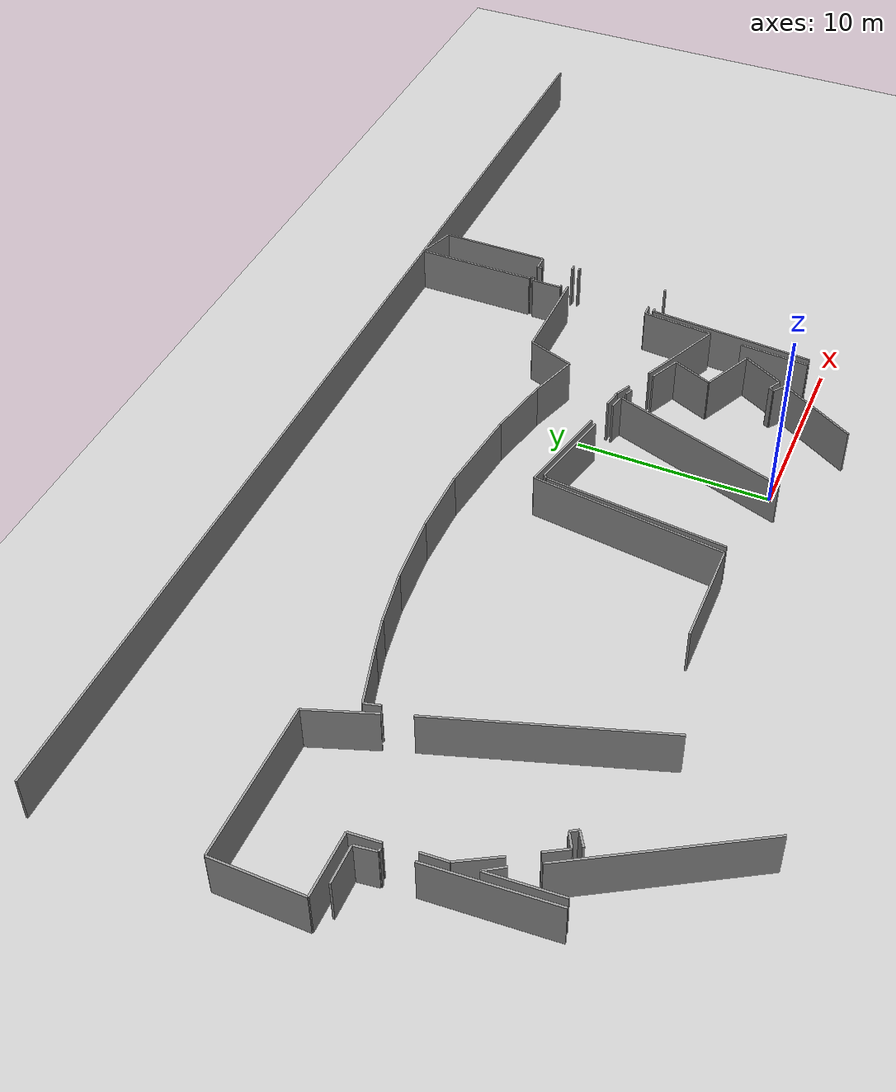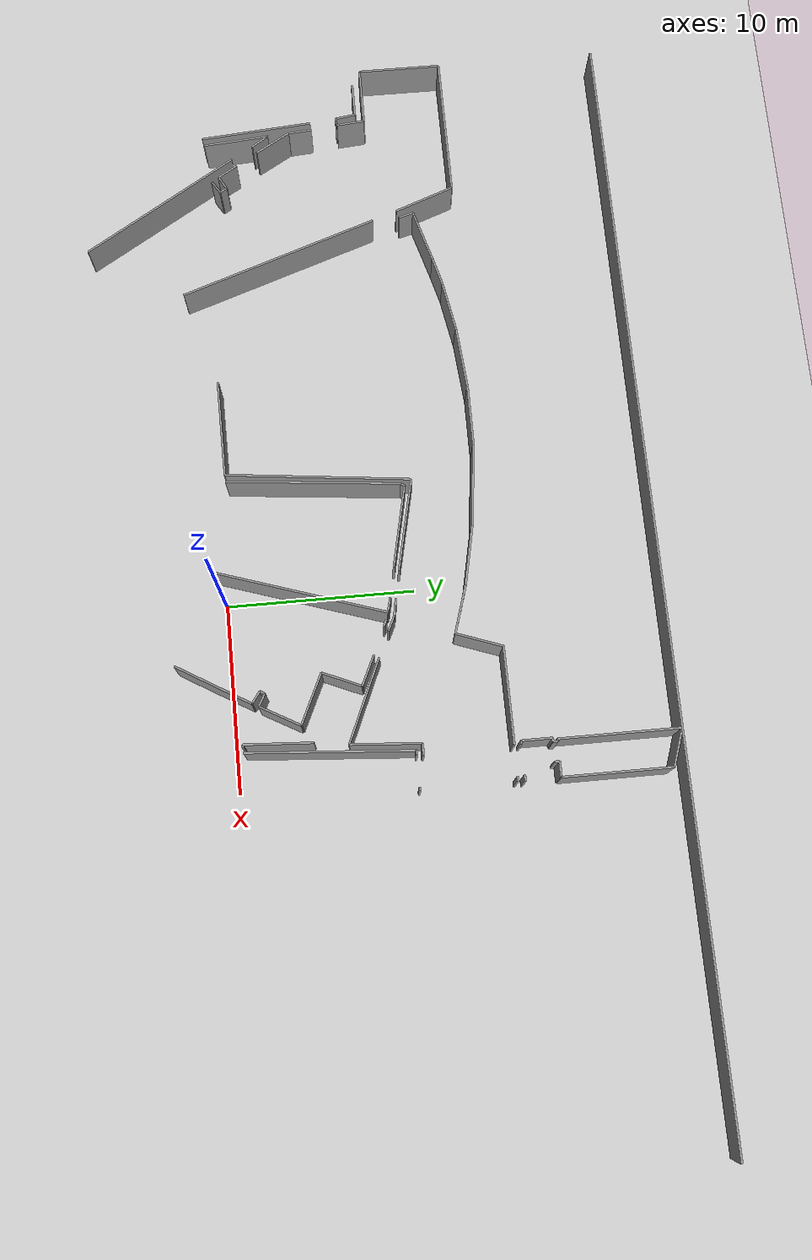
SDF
<sdf version="1.6">
 <world name="default">
  <model name="ground_plane">
   <static>1</static>
   <link name="link">
    <collision name="collision">
     <geometry><plane><normal>0 0 1</normal><size>100 100</size></plane></geometry>
     <surface><friction><ode><mu>100</mu><mu2>50</mu2></ode></friction></surface>
    </collision>
    <visual name="visual">
     <cast_shadows>0</cast_shadows>
     <geometry><plane><normal>0 0 1</normal><size>100 100</size></plane></geometry>
     <material>
      <script><uri>file://media/materials/scripts/gazebo.material</uri><name>Gazebo/Grey</name></script>
     </material>
    </visual>
   </link>
  </model>
  <model name="50032446">
   <static>1</static>
   <link name="Wall_1">
    <collision name="Wall_1_Collision">
     <geometry><box><size>1.85060218915 0.1 2.5</size></box></geometry>
     <pose>0.925301094577 0 1.25 0 0 0</pose>
    </collision>
    <visual name="Wall_1_Visual">
     <pose>0.925301094577 0 1.25 0 0 0</pose>
     <geometry><box><size>1.85060218915 0.1 2.5</size></box></geometry>
     <material>
      <script><uri>file://media/materials/scripts/gazebo.material</uri><name>Gazebo/Grey</name></script>
      <ambient>1 1 1 1</ambient>
     </material>
    </visual>
    <pose>0.829860753686 -13.6300498552 0 0 0 0.0</pose>
   </link>
   <link name="Wall_2">
    <collision name="Wall_2_Collision">
     <geometry><box><size>1.08629447662 0.1 2.5</size></box></geometry>
     <pose>0.54314723831 0 1.25 0 0 0</pose>
    </collision>
    <visual name="Wall_2_Visual">
     <pose>0.54314723831 0 1.25 0 0 0</pose>
     <geometry><box><size>1.08629447662 0.1 2.5</size></box></geometry>
     <material>
      <script><uri>file://media/materials/scripts/gazebo.material</uri><name>Gazebo/Grey</name></script>
      <ambient>1 1 1 1</ambient>
     </material>
    </visual>
    <pose>2.68046294284 -13.6300498552 0 0 0 -1.43750263371</pose>
   </link>
   <link name="Wall_3">
    <collision name="Wall_3_Collision">
     <geometry><box><size>0.158855427582 0.1 2.5</size></box></geometry>
     <pose>0.0794277137908 0 1.25 0 0 0</pose>
    </collision>
    <visual name="Wall_3_Visual">
     <pose>0.0794277137908 0 1.25 0 0 0</pose>
     <geometry><box><size>0.158855427582 0.1 2.5</size></box></geometry>
     <material>
      <script><uri>file://media/materials/scripts/gazebo.material</uri><name>Gazebo/Grey</name></script>
      <ambient>1 1 1 1</ambient>
     </material>
    </visual>
    <pose>2.82483075543 -14.7067084012 0 0 0 0.0</pose>
   </link>
   <link name="Wall_4">
    <collision name="Wall_4_Collision">
     <geometry><box><size>6.10033639075 0.1 2.5</size></box></geometry>
     <pose>3.05016819538 0 1.25 0 0 0</pose>
    </collision>
    <visual name="Wall_4_Visual">
     <pose>3.05016819538 0 1.25 0 0 0</pose>
     <geometry><box><size>6.10033639075 0.1 2.5</size></box></geometry>
     <material>
      <script><uri>file://media/materials/scripts/gazebo.material</uri><name>Gazebo/Grey</name></script>
      <ambient>1 1 1 1</ambient>
     </material>
    </visual>
    <pose>2.98368618301 -16.1808867691 0 0 0 -1.49710813323</pose>
   </link>
   <link name="Wall_9">
    <collision name="Wall_9_Collision">
     <geometry><box><size>3.55922427608 0.1 2.5</size></box></geometry>
     <pose>1.77961213804 0 1.25 0 0 0</pose>
    </collision>
    <visual name="Wall_9_Visual">
     <pose>1.77961213804 0 1.25 0 0 0</pose>
     <geometry><box><size>3.55922427608 0.1 2.5</size></box></geometry>
     <material>
      <script><uri>file://media/materials/scripts/gazebo.material</uri><name>Gazebo/Grey</name></script>
      <ambient>1 1 1 1</ambient>
     </material>
    </visual>
    <pose>3.842267998 -22.1693551359 0 0 0 1.6419104536</pose>
   </link>
   <link name="Wall_10">
    <collision name="Wall_10_Collision">
     <geometry><box><size>1.06295947958 0.1 2.5</size></box></geometry>
     <pose>0.531479739792 0 1.25 0 0 0</pose>
    </collision>
    <visual name="Wall_10_Visual">
     <pose>0.531479739792 0 1.25 0 0 0</pose>
     <geometry><box><size>1.06295947958 0.1 2.5</size></box></geometry>
     <material>
      <script><uri>file://media/materials/scripts/gazebo.material</uri><name>Gazebo/Grey</name></script>
      <ambient>1 1 1 1</ambient>
     </material>
    </visual>
    <pose>3.58937015729 -18.619126956 0 0 0 -0.998180185512</pose>
   </link>
   <link name="Wall_11">
    <collision name="Wall_11_Collision">
     <geometry><box><size>9.55704429316 0.1 2.5</size></box></geometry>
     <pose>4.77852214658 0 1.25 0 0 0</pose>
    </collision>
    <visual name="Wall_11_Visual">
     <pose>4.77852214658 0 1.25 0 0 0</pose>
     <geometry><box><size>9.55704429316 0.1 2.5</size></box></geometry>
     <material>
      <script><uri>file://media/materials/scripts/gazebo.material</uri><name>Gazebo/Grey</name></script>
      <ambient>1 1 1 1</ambient>
     </material>
    </visual>
    <pose>4.84064258927 -20.6997518043 0 0 0 -1.03433121391</pose>
   </link>
   <link name="Wall_25">
    <collision name="Wall_25_Collision">
     <geometry><box><size>1.18983791483 0.1 2.5</size></box></geometry>
     <pose>0.594918957417 0 1.25 0 0 0</pose>
    </collision>
    <visual name="Wall_25_Visual">
     <pose>0.594918957417 0 1.25 0 0 0</pose>
     <geometry><box><size>1.18983791483 0.1 2.5</size></box></geometry>
     <material>
      <script><uri>file://media/materials/scripts/gazebo.material</uri><name>Gazebo/Grey</name></script>
      <ambient>1 1 1 1</ambient>
     </material>
    </visual>
    <pose>5.87129660342 -21.4838621948 0 0 0 2.10586710902</pose>
   </link>
   <link name="Wall_26">
    <collision name="Wall_26_Collision">
     <geometry><box><size>2.13955775843 0.1 2.5</size></box></geometry>
     <pose>1.06977887922 0 1.25 0 0 0</pose>
    </collision>
    <visual name="Wall_26_Visual">
     <pose>1.06977887922 0 1.25 0 0 0</pose>
     <geometry><box><size>2.13955775843 0.1 2.5</size></box></geometry>
     <material>
      <script><uri>file://media/materials/scripts/gazebo.material</uri><name>Gazebo/Grey</name></script>
      <ambient>1 1 1 1</ambient>
     </material>
    </visual>
    <pose>4.55699033778 -19.2850489084 0 0 0 2.08988350223</pose>
   </link>
   <link name="Wall_27">
    <collision name="Wall_27_Collision">
     <geometry><box><size>1.29192081993 0.1 2.5</size></box></geometry>
     <pose>0.645960409967 0 1.25 0 0 0</pose>
    </collision>
    <visual name="Wall_27_Visual">
     <pose>0.645960409967 0 1.25 0 0 0</pose>
     <geometry><box><size>1.29192081993 0.1 2.5</size></box></geometry>
     <material>
      <script><uri>file://media/materials/scripts/gazebo.material</uri><name>Gazebo/Grey</name></script>
      <ambient>1 1 1 1</ambient>
     </material>
    </visual>
    <pose>3.49558191285 -17.4273299961 0 0 0 1.63931441809</pose>
   </link>
   <link name="Wall_28">
    <collision name="Wall_28_Collision">
     <geometry><box><size>1.51652392377 0.1 2.5</size></box></geometry>
     <pose>0.758261961885 0 1.25 0 0 0</pose>
    </collision>
    <visual name="Wall_28_Visual">
     <pose>0.758261961885 0 1.25 0 0 0</pose>
     <geometry><box><size>1.51652392377 0.1 2.5</size></box></geometry>
     <material>
      <script><uri>file://media/materials/scripts/gazebo.material</uri><name>Gazebo/Grey</name></script>
      <ambient>1 1 1 1</ambient>
     </material>
    </visual>
    <pose>3.23353399951 -14.6787498459 0 0 0 1.64763248955</pose>
   </link>
   <link name="Wall_29">
    <collision name="Wall_29_Collision">
     <geometry><box><size>3.11722836435 0.1 2.5</size></box></geometry>
     <pose>1.55861418217 0 1.25 0 0 0</pose>
    </collision>
    <visual name="Wall_29_Visual">
     <pose>1.55861418217 0 1.25 0 0 0</pose>
     <geometry><box><size>3.11722836435 0.1 2.5</size></box></geometry>
     <material>
      <script><uri>file://media/materials/scripts/gazebo.material</uri><name>Gazebo/Grey</name></script>
      <ambient>1 1 1 1</ambient>
     </material>
    </visual>
    <pose>3.11712474218 -13.166700344 0 0 0 3.13343888778</pose>
   </link>
   <link name="Wall_30">
    <collision name="Wall_30_Collision">
     <geometry><box><size>4.47193606022 0.1 2.5</size></box></geometry>
     <pose>2.23596803011 0 1.25 0 0 0</pose>
    </collision>
    <visual name="Wall_30_Visual">
     <pose>2.23596803011 0 1.25 0 0 0</pose>
     <geometry><box><size>4.47193606022 0.1 2.5</size></box></geometry>
     <material>
      <script><uri>file://media/materials/scripts/gazebo.material</uri><name>Gazebo/Grey</name></script>
      <ambient>1 1 1 1</ambient>
     </material>
    </visual>
    <pose>0.0 -13.1412834756 0 0 0 1.56437377102</pose>
   </link>
   <link name="Wall_31">
    <collision name="Wall_31_Collision">
     <geometry><box><size>7.61540211392 0.1 2.5</size></box></geometry>
     <pose>3.80770105696 0 1.25 0 0 0</pose>
    </collision>
    <visual name="Wall_31_Visual">
     <pose>3.80770105696 0 1.25 0 0 0</pose>
     <geometry><box><size>7.61540211392 0.1 2.5</size></box></geometry>
     <material>
      <script><uri>file://media/materials/scripts/gazebo.material</uri><name>Gazebo/Grey</name></script>
      <ambient>1 1 1 1</ambient>
     </material>
    </visual>
    <pose>0.0287210613068 -8.66943964701 0 0 0 0.0</pose>
   </link>
   <link name="Wall_32">
    <collision name="Wall_32_Collision">
     <geometry><box><size>3.40149536224 0.1 2.5</size></box></geometry>
     <pose>1.70074768112 0 1.25 0 0 0</pose>
    </collision>
    <visual name="Wall_32_Visual">
     <pose>1.70074768112 0 1.25 0 0 0</pose>
     <geometry><box><size>3.40149536224 0.1 2.5</size></box></geometry>
     <material>
      <script><uri>file://media/materials/scripts/gazebo.material</uri><name>Gazebo/Grey</name></script>
      <ambient>1 1 1 1</ambient>
     </material>
    </visual>
    <pose>7.64412317523 -8.66943964701 0 0 0 -1.22817952382</pose>
   </link>
   <link name="Wall_33">
    <collision name="Wall_33_Collision">
     <geometry><box><size>11.1890046702 0.1 2.5</size></box></geometry>
     <pose>5.59450233509 0 1.25 0 0 0</pose>
    </collision>
    <visual name="Wall_33_Visual">
     <pose>5.59450233509 0 1.25 0 0 0</pose>
     <geometry><box><size>11.1890046702 0.1 2.5</size></box></geometry>
     <material>
      <script><uri>file://media/materials/scripts/gazebo.material</uri><name>Gazebo/Grey</name></script>
      <ambient>1 1 1 1</ambient>
     </material>
    </visual>
    <pose>9.23750665604 -13.2030464658 0 0 0 -1.25215619345</pose>
   </link>
   <link name="Wall_49">
    <collision name="Wall_49_Collision">
     <geometry><box><size>3.61417899457 0.1 2.5</size></box></geometry>
     <pose>1.80708949728 0 1.25 0 0 0</pose>
    </collision>
    <visual name="Wall_49_Visual">
     <pose>1.80708949728 0 1.25 0 0 0</pose>
     <geometry><box><size>3.61417899457 0.1 2.5</size></box></geometry>
     <material>
      <script><uri>file://media/materials/scripts/gazebo.material</uri><name>Gazebo/Grey</name></script>
      <ambient>1 1 1 1</ambient>
     </material>
    </visual>
    <pose>37.7399828944 -18.6587772707 0 0 0 -1.6308199528</pose>
   </link>
   <link name="Wall_50">
    <collision name="Wall_50_Collision">
     <geometry><box><size>0.134041151757 0.1 2.5</size></box></geometry>
     <pose>0.0670205758785 0 1.25 0 0 0</pose>
    </collision>
    <visual name="Wall_50_Visual">
     <pose>0.0670205758785 0 1.25 0 0 0</pose>
     <geometry><box><size>0.134041151757 0.1 2.5</size></box></geometry>
     <material>
      <script><uri>file://media/materials/scripts/gazebo.material</uri><name>Gazebo/Grey</name></script>
      <ambient>1 1 1 1</ambient>
     </material>
    </visual>
    <pose>37.5231770069 -22.2664475733 0 0 0 -0.0721180563398</pose>
   </link>
   <link name="Wall_71">
    <collision name="Wall_71_Collision">
     <geometry><box><size>0.807853841565 0.1 2.5</size></box></geometry>
     <pose>0.403926920783 0 1.25 0 0 0</pose>
    </collision>
    <visual name="Wall_71_Visual">
     <pose>0.403926920783 0 1.25 0 0 0</pose>
     <geometry><box><size>0.807853841565 0.1 2.5</size></box></geometry>
     <material>
      <script><uri>file://media/materials/scripts/gazebo.material</uri><name>Gazebo/Grey</name></script>
      <ambient>1 1 1 1</ambient>
     </material>
    </visual>
    <pose>6.10513179282 -21.8811278481 0 0 0 0.555797921971</pose>
   </link>
   <link name="Wall_72">
    <collision name="Wall_72_Collision">
     <geometry><box><size>0.418924430595 0.1 2.5</size></box></geometry>
     <pose>0.209462215297 0 1.25 0 0 0</pose>
    </collision>
    <visual name="Wall_72_Visual">
     <pose>0.209462215297 0 1.25 0 0 0</pose>
     <geometry><box><size>0.418924430595 0.1 2.5</size></box></geometry>
     <material>
      <script><uri>file://media/materials/scripts/gazebo.material</uri><name>Gazebo/Grey</name></script>
      <ambient>1 1 1 1</ambient>
     </material>
    </visual>
    <pose>6.79138723997 -21.4548869648 0 0 0 2.1347335553</pose>
   </link>
   <link name="Wall_73">
    <collision name="Wall_73_Collision">
     <geometry><box><size>0.794583911101 0.1 2.5</size></box></geometry>
     <pose>0.397291955551 0 1.25 0 0 0</pose>
    </collision>
    <visual name="Wall_73_Visual">
     <pose>0.397291955551 0 1.25 0 0 0</pose>
     <geometry><box><size>0.794583911101 0.1 2.5</size></box></geometry>
     <material>
      <script><uri>file://media/materials/scripts/gazebo.material</uri><name>Gazebo/Grey</name></script>
      <ambient>1 1 1 1</ambient>
     </material>
    </visual>
    <pose>6.56746462925 -21.1008299878 0 0 0 -2.6385952882</pose>
   </link>
   <link name="Wall_75">
    <collision name="Wall_75_Collision">
     <geometry><box><size>0.824879237004 0.1 2.5</size></box></geometry>
     <pose>0.412439618502 0 1.25 0 0 0</pose>
    </collision>
    <visual name="Wall_75_Visual">
     <pose>0.412439618502 0 1.25 0 0 0</pose>
     <geometry><box><size>0.824879237004 0.1 2.5</size></box></geometry>
     <material>
      <script><uri>file://media/materials/scripts/gazebo.material</uri><name>Gazebo/Grey</name></script>
      <ambient>1 1 1 1</ambient>
     </material>
    </visual>
    <pose>9.18591041316 -11.7479307492 0 0 0 1.82018419833</pose>
   </link>
   <link name="Wall_76">
    <collision name="Wall_76_Collision">
     <geometry><box><size>2.96220750891 0.1 2.5</size></box></geometry>
     <pose>1.48110375446 0 1.25 0 0 0</pose>
    </collision>
    <visual name="Wall_76_Visual">
     <pose>1.48110375446 0 1.25 0 0 0</pose>
     <geometry><box><size>2.96220750891 0.1 2.5</size></box></geometry>
     <material>
      <script><uri>file://media/materials/scripts/gazebo.material</uri><name>Gazebo/Grey</name></script>
      <ambient>1 1 1 1</ambient>
     </material>
    </visual>
    <pose>8.98232129718 -10.9485702376 0 0 0 0.278323231124</pose>
   </link>
   <link name="Wall_77">
    <collision name="Wall_77_Collision">
     <geometry><box><size>1.59074975212 0.1 2.5</size></box></geometry>
     <pose>0.795374876058 0 1.25 0 0 0</pose>
    </collision>
    <visual name="Wall_77_Visual">
     <pose>0.795374876058 0 1.25 0 0 0</pose>
     <geometry><box><size>1.59074975212 0.1 2.5</size></box></geometry>
     <material>
      <script><uri>file://media/materials/scripts/gazebo.material</uri><name>Gazebo/Grey</name></script>
      <ambient>1 1 1 1</ambient>
     </material>
    </visual>
    <pose>11.8305355715 -10.134722111 0 0 0 0.253891773858</pose>
   </link>
   <link name="Wall_78">
    <collision name="Wall_78_Collision">
     <geometry><box><size>2.69580585327 0.1 2.5</size></box></geometry>
     <pose>1.34790292664 0 1.25 0 0 0</pose>
    </collision>
    <visual name="Wall_78_Visual">
     <pose>1.34790292664 0 1.25 0 0 0</pose>
     <geometry><box><size>2.69580585327 0.1 2.5</size></box></geometry>
     <material>
      <script><uri>file://media/materials/scripts/gazebo.material</uri><name>Gazebo/Grey</name></script>
      <ambient>1 1 1 1</ambient>
     </material>
    </visual>
    <pose>13.37028946 -9.73516893957 0 0 0 0.173022774526</pose>
   </link>
   <link name="Wall_79">
    <collision name="Wall_79_Collision">
     <geometry><box><size>3.39498808591 0.1 2.5</size></box></geometry>
     <pose>1.69749404295 0 1.25 0 0 0</pose>
    </collision>
    <visual name="Wall_79_Visual">
     <pose>1.69749404295 0 1.25 0 0 0</pose>
     <geometry><box><size>3.39498808591 0.1 2.5</size></box></geometry>
     <material>
      <script><uri>file://media/materials/scripts/gazebo.material</uri><name>Gazebo/Grey</name></script>
      <ambient>1 1 1 1</ambient>
     </material>
    </visual>
    <pose>16.0258438718 -9.27105692235 0 0 0 0.0850001969323</pose>
   </link>
   <link name="Wall_80">
    <collision name="Wall_80_Collision">
     <geometry><box><size>3.26713987834 0.1 2.5</size></box></geometry>
     <pose>1.63356993917 0 1.25 0 0 0</pose>
    </collision>
    <visual name="Wall_80_Visual">
     <pose>1.63356993917 0 1.25 0 0 0</pose>
     <geometry><box><size>3.26713987834 0.1 2.5</size></box></geometry>
     <material>
      <script><uri>file://media/materials/scripts/gazebo.material</uri><name>Gazebo/Grey</name></script>
      <ambient>1 1 1 1</ambient>
     </material>
    </visual>
    <pose>19.4085748889 -8.98282963454 0 0 0 -0.00583469339558</pose>
   </link>
   <link name="Wall_81">
    <collision name="Wall_81_Collision">
     <geometry><box><size>4.45061373806 0.1 2.5</size></box></geometry>
     <pose>2.22530686903 0 1.25 0 0 0</pose>
    </collision>
    <visual name="Wall_81_Visual">
     <pose>2.22530686903 0 1.25 0 0 0</pose>
     <geometry><box><size>4.45061373806 0.1 2.5</size></box></geometry>
     <material>
      <script><uri>file://media/materials/scripts/gazebo.material</uri><name>Gazebo/Grey</name></script>
      <ambient>1 1 1 1</ambient>
     </material>
    </visual>
    <pose>22.6756591547 -9.00189228585 0 0 0 -0.116881874477</pose>
   </link>
   <link name="Wall_82">
    <collision name="Wall_82_Collision">
     <geometry><box><size>3.2417902446 0.1 2.5</size></box></geometry>
     <pose>1.6208951223 0 1.25 0 0 0</pose>
    </collision>
    <visual name="Wall_82_Visual">
     <pose>1.6208951223 0 1.25 0 0 0</pose>
     <geometry><box><size>3.2417902446 0.1 2.5</size></box></geometry>
     <material>
      <script><uri>file://media/materials/scripts/gazebo.material</uri><name>Gazebo/Grey</name></script>
      <ambient>1 1 1 1</ambient>
     </material>
    </visual>
    <pose>27.0959067404 -9.52090473885 0 0 0 -0.208974135449</pose>
   </link>
   <link name="Wall_83">
    <collision name="Wall_83_Collision">
     <geometry><box><size>2.6196080356 0.1 2.5</size></box></geometry>
     <pose>1.3098040178 0 1.25 0 0 0</pose>
    </collision>
    <visual name="Wall_83_Visual">
     <pose>1.3098040178 0 1.25 0 0 0</pose>
     <geometry><box><size>2.6196080356 0.1 2.5</size></box></geometry>
     <material>
      <script><uri>file://media/materials/scripts/gazebo.material</uri><name>Gazebo/Grey</name></script>
      <ambient>1 1 1 1</ambient>
     </material>
    </visual>
    <pose>30.2671694123 -10.1934350771 0 0 0 -0.305611045138</pose>
   </link>
   <link name="Wall_84">
    <collision name="Wall_84_Collision">
     <geometry><box><size>2.54915910462 0.1 2.5</size></box></geometry>
     <pose>1.27457955231 0 1.25 0 0 0</pose>
    </collision>
    <visual name="Wall_84_Visual">
     <pose>1.27457955231 0 1.25 0 0 0</pose>
     <geometry><box><size>2.54915910462 0.1 2.5</size></box></geometry>
     <material>
      <script><uri>file://media/materials/scripts/gazebo.material</uri><name>Gazebo/Grey</name></script>
      <ambient>1 1 1 1</ambient>
     </material>
    </visual>
    <pose>32.7653934086 -10.9816121665 0 0 0 1.22069643166</pose>
   </link>
   <link name="Wall_85">
    <collision name="Wall_85_Collision">
     <geometry><box><size>5.12989184725 0.1 2.5</size></box></geometry>
     <pose>2.56494592362 0 1.25 0 0 0</pose>
    </collision>
    <visual name="Wall_85_Visual">
     <pose>2.56494592362 0 1.25 0 0 0</pose>
     <geometry><box><size>5.12989184725 0.1 2.5</size></box></geometry>
     <material>
      <script><uri>file://media/materials/scripts/gazebo.material</uri><name>Gazebo/Grey</name></script>
      <ambient>1 1 1 1</ambient>
     </material>
    </visual>
    <pose>33.6397336821 -8.58708899335 0 0 0 0.0014368518081</pose>
   </link>
   <link name="Wall_86">
    <collision name="Wall_86_Collision">
     <geometry><box><size>0.247051960975 0.1 2.5</size></box></geometry>
     <pose>0.123525980487 0 1.25 0 0 0</pose>
    </collision>
    <visual name="Wall_86_Visual">
     <pose>0.123525980487 0 1.25 0 0 0</pose>
     <geometry><box><size>0.247051960975 0.1 2.5</size></box></geometry>
     <material>
      <script><uri>file://media/materials/scripts/gazebo.material</uri><name>Gazebo/Grey</name></script>
      <ambient>1 1 1 1</ambient>
     </material>
    </visual>
    <pose>40.3574120036 -8.59445988519 0 0 0 0.0</pose>
   </link>
   <link name="Wall_89">
    <collision name="Wall_89_Collision">
     <geometry><box><size>0.601617275337 0.1 2.5</size></box></geometry>
     <pose>0.300808637669 0 1.25 0 0 0</pose>
    </collision>
    <visual name="Wall_89_Visual">
     <pose>0.300808637669 0 1.25 0 0 0</pose>
     <geometry><box><size>0.601617275337 0.1 2.5</size></box></geometry>
     <material>
      <script><uri>file://media/materials/scripts/gazebo.material</uri><name>Gazebo/Grey</name></script>
      <ambient>1 1 1 1</ambient>
     </material>
    </visual>
    <pose>38.8611209601 -13.2010131164 0 0 0 3.14159265359</pose>
   </link>
   <link name="Wall_90">
    <collision name="Wall_90_Collision">
     <geometry><box><size>3.70451247746 0.1 2.5</size></box></geometry>
     <pose>1.85225623873 0 1.25 0 0 0</pose>
    </collision>
    <visual name="Wall_90_Visual">
     <pose>1.85225623873 0 1.25 0 0 0</pose>
     <geometry><box><size>3.70451247746 0.1 2.5</size></box></geometry>
     <material>
      <script><uri>file://media/materials/scripts/gazebo.material</uri><name>Gazebo/Grey</name></script>
      <ambient>1 1 1 1</ambient>
     </material>
    </visual>
    <pose>38.2595036848 -13.2010131164 0 0 0 -1.64303745705</pose>
   </link>
   <link name="Wall_91">
    <collision name="Wall_91_Collision">
     <geometry><box><size>4.72152969649 0.1 2.5</size></box></geometry>
     <pose>2.36076484824 0 1.25 0 0 0</pose>
    </collision>
    <visual name="Wall_91_Visual">
     <pose>2.36076484824 0 1.25 0 0 0</pose>
     <geometry><box><size>4.72152969649 0.1 2.5</size></box></geometry>
     <material>
      <script><uri>file://media/materials/scripts/gazebo.material</uri><name>Gazebo/Grey</name></script>
      <ambient>1 1 1 1</ambient>
     </material>
    </visual>
    <pose>37.9921182291 -16.8958632776 0 0 0 2.72799240422</pose>
   </link>
   <link name="Wall_92">
    <collision name="Wall_92_Collision">
     <geometry><box><size>0.842125445099 0.1 2.5</size></box></geometry>
     <pose>0.421062722549 0 1.25 0 0 0</pose>
    </collision>
    <visual name="Wall_92_Visual">
     <pose>0.421062722549 0 1.25 0 0 0</pose>
     <geometry><box><size>0.842125445099 0.1 2.5</size></box></geometry>
     <material>
      <script><uri>file://media/materials/scripts/gazebo.material</uri><name>Gazebo/Grey</name></script>
      <ambient>1 1 1 1</ambient>
     </material>
    </visual>
    <pose>32.3198357054 -14.3945892571 0 0 0 2.69130817998</pose>
   </link>
   <link name="Wall_93">
    <collision name="Wall_93_Collision">
     <geometry><box><size>0.937128452002 0.1 2.5</size></box></geometry>
     <pose>0.468564226001 0 1.25 0 0 0</pose>
    </collision>
    <visual name="Wall_93_Visual">
     <pose>0.468564226001 0 1.25 0 0 0</pose>
     <geometry><box><size>0.937128452002 0.1 2.5</size></box></geometry>
     <material>
      <script><uri>file://media/materials/scripts/gazebo.material</uri><name>Gazebo/Grey</name></script>
      <ambient>1 1 1 1</ambient>
     </material>
    </visual>
    <pose>31.5616505206 -14.0280780145 0 0 0 2.96547500561</pose>
   </link>
   <link name="Wall_94">
    <collision name="Wall_94_Collision">
     <geometry><box><size>4.99848779132 0.1 2.5</size></box></geometry>
     <pose>2.49924389566 0 1.25 0 0 0</pose>
    </collision>
    <visual name="Wall_94_Visual">
     <pose>2.49924389566 0 1.25 0 0 0</pose>
     <geometry><box><size>4.99848779132 0.1 2.5</size></box></geometry>
     <material>
      <script><uri>file://media/materials/scripts/gazebo.material</uri><name>Gazebo/Grey</name></script>
      <ambient>1 1 1 1</ambient>
     </material>
    </visual>
    <pose>29.1569606 -13.5654910094 0 0 0 2.91996195454</pose>
   </link>
   <link name="Wall_95">
    <collision name="Wall_95_Collision">
     <geometry><box><size>9.84946114627 0.1 2.5</size></box></geometry>
     <pose>4.92473057313 0 1.25 0 0 0</pose>
    </collision>
    <visual name="Wall_95_Visual">
     <pose>4.92473057313 0 1.25 0 0 0</pose>
     <geometry><box><size>9.84946114627 0.1 2.5</size></box></geometry>
     <material>
      <script><uri>file://media/materials/scripts/gazebo.material</uri><name>Gazebo/Grey</name></script>
      <ambient>1 1 1 1</ambient>
     </material>
    </visual>
    <pose>24.280734395 -12.4667197879 0 0 0 -1.68276727064</pose>
   </link>
   <link name="Wall_96">
    <collision name="Wall_96_Collision">
     <geometry><box><size>5.23252553188 0.1 2.5</size></box></geometry>
     <pose>2.61626276594 0 1.25 0 0 0</pose>
    </collision>
    <visual name="Wall_96_Visual">
     <pose>2.61626276594 0 1.25 0 0 0</pose>
     <geometry><box><size>5.23252553188 0.1 2.5</size></box></geometry>
     <material>
      <script><uri>file://media/materials/scripts/gazebo.material</uri><name>Gazebo/Grey</name></script>
      <ambient>1 1 1 1</ambient>
     </material>
    </visual>
    <pose>23.1801839927 -22.2545016451 0 0 0 -3.13265477832</pose>
   </link>
   <link name="Wall_98">
    <collision name="Wall_98_Collision">
     <geometry><box><size>9.25534686642 0.1 2.5</size></box></geometry>
     <pose>4.62767343321 0 1.25 0 0 0</pose>
    </collision>
    <visual name="Wall_98_Visual">
     <pose>4.62767343321 0 1.25 0 0 0</pose>
     <geometry><box><size>9.25534686642 0.1 2.5</size></box></geometry>
     <material>
      <script><uri>file://media/materials/scripts/gazebo.material</uri><name>Gazebo/Grey</name></script>
      <ambient>1 1 1 1</ambient>
     </material>
    </visual>
    <pose>23.543645211 -22.2545016451 0 0 0 1.47044726846</pose>
   </link>
   <link name="Wall_99">
    <collision name="Wall_99_Collision">
     <geometry><box><size>0.244676800956 0.1 2.5</size></box></geometry>
     <pose>0.122338400478 0 1.25 0 0 0</pose>
    </collision>
    <visual name="Wall_99_Visual">
     <pose>0.122338400478 0 1.25 0 0 0</pose>
     <geometry><box><size>0.244676800956 0.1 2.5</size></box></geometry>
     <material>
      <script><uri>file://media/materials/scripts/gazebo.material</uri><name>Gazebo/Grey</name></script>
      <ambient>1 1 1 1</ambient>
     </material>
    </visual>
    <pose>24.4708525707 -13.0457160504 0 0 0 0.896542081483</pose>
   </link>
   <link name="Wall_100">
    <collision name="Wall_100_Collision">
     <geometry><box><size>4.47224205277 0.1 2.5</size></box></geometry>
     <pose>2.23612102638 0 1.25 0 0 0</pose>
    </collision>
    <visual name="Wall_100_Visual">
     <pose>2.23612102638 0 1.25 0 0 0</pose>
     <geometry><box><size>4.47224205277 0.1 2.5</size></box></geometry>
     <material>
      <script><uri>file://media/materials/scripts/gazebo.material</uri><name>Gazebo/Grey</name></script>
      <ambient>1 1 1 1</ambient>
     </material>
    </visual>
    <pose>24.6236079499 -12.8545811999 0 0 0 -0.217503883494</pose>
   </link>
   <link name="Wall_101">
    <collision name="Wall_101_Collision">
     <geometry><box><size>0.770192178086 0.1 2.5</size></box></geometry>
     <pose>0.385096089043 0 1.25 0 0 0</pose>
    </collision>
    <visual name="Wall_101_Visual">
     <pose>0.385096089043 0 1.25 0 0 0</pose>
     <geometry><box><size>0.770192178086 0.1 2.5</size></box></geometry>
     <material>
      <script><uri>file://media/materials/scripts/gazebo.material</uri><name>Gazebo/Grey</name></script>
      <ambient>1 1 1 1</ambient>
     </material>
    </visual>
    <pose>30.5879302917 -14.1480456334 0 0 0 -0.244658509464</pose>
   </link>
   <link name="Wall_102">
    <collision name="Wall_102_Collision">
     <geometry><box><size>9.49704937351 0.1 2.5</size></box></geometry>
     <pose>4.74852468676 0 1.25 0 0 0</pose>
    </collision>
    <visual name="Wall_102_Visual">
     <pose>4.74852468676 0 1.25 0 0 0</pose>
     <geometry><box><size>9.49704937351 0.1 2.5</size></box></geometry>
     <material>
      <script><uri>file://media/materials/scripts/gazebo.material</uri><name>Gazebo/Grey</name></script>
      <ambient>1 1 1 1</ambient>
     </material>
    </visual>
    <pose>31.335186223 -14.3346054476 0 0 0 -1.88851839878</pose>
   </link>
   <link name="Wall_105">
    <collision name="Wall_105_Collision">
     <geometry><box><size>0.405015465418 0.1 2.5</size></box></geometry>
     <pose>0.202507732709 0 1.25 0 0 0</pose>
    </collision>
    <visual name="Wall_105_Visual">
     <pose>0.202507732709 0 1.25 0 0 0</pose>
     <geometry><box><size>0.405015465418 0.1 2.5</size></box></geometry>
     <material>
      <script><uri>file://media/materials/scripts/gazebo.material</uri><name>Gazebo/Grey</name></script>
      <ambient>1 1 1 1</ambient>
     </material>
    </visual>
    <pose>31.7169475866 -14.4538105605 0 0 0 -0.415356999601</pose>
   </link>
   <link name="Wall_106">
    <collision name="Wall_106_Collision">
     <geometry><box><size>1.70979880237 0.1 2.5</size></box></geometry>
     <pose>0.854899401183 0 1.25 0 0 0</pose>
    </collision>
    <visual name="Wall_106_Visual">
     <pose>0.854899401183 0 1.25 0 0 0</pose>
     <geometry><box><size>1.70979880237 0.1 2.5</size></box></geometry>
     <material>
      <script><uri>file://media/materials/scripts/gazebo.material</uri><name>Gazebo/Grey</name></script>
      <ambient>1 1 1 1</ambient>
     </material>
    </visual>
    <pose>33.5169702076 -15.2557127589 0 0 0 -0.4376509399</pose>
   </link>
   <link name="Wall_107">
    <collision name="Wall_107_Collision">
     <geometry><box><size>2.21483122206 0.1 2.5</size></box></geometry>
     <pose>1.10741561103 0 1.25 0 0 0</pose>
    </collision>
    <visual name="Wall_107_Visual">
     <pose>1.10741561103 0 1.25 0 0 0</pose>
     <geometry><box><size>2.21483122206 0.1 2.5</size></box></geometry>
     <material>
      <script><uri>file://media/materials/scripts/gazebo.material</uri><name>Gazebo/Grey</name></script>
      <ambient>1 1 1 1</ambient>
     </material>
    </visual>
    <pose>35.06562 -15.9803476773 0 0 0 -1.97611002855</pose>
   </link>
   <link name="Wall_108">
    <collision name="Wall_108_Collision">
     <geometry><box><size>2.88561415609 0.1 2.5</size></box></geometry>
     <pose>1.44280707804 0 1.25 0 0 0</pose>
    </collision>
    <visual name="Wall_108_Visual">
     <pose>1.44280707804 0 1.25 0 0 0</pose>
     <geometry><box><size>2.88561415609 0.1 2.5</size></box></geometry>
     <material>
      <script><uri>file://media/materials/scripts/gazebo.material</uri><name>Gazebo/Grey</name></script>
      <ambient>1 1 1 1</ambient>
     </material>
    </visual>
    <pose>34.1922964014 -18.0157304999 0 0 0 -0.436424954716</pose>
   </link>
   <link name="Wall_109">
    <collision name="Wall_109_Collision">
     <geometry><box><size>2.37585652263 0.1 2.5</size></box></geometry>
     <pose>1.18792826132 0 1.25 0 0 0</pose>
    </collision>
    <visual name="Wall_109_Visual">
     <pose>1.18792826132 0 1.25 0 0 0</pose>
     <geometry><box><size>2.37585652263 0.1 2.5</size></box></geometry>
     <material>
      <script><uri>file://media/materials/scripts/gazebo.material</uri><name>Gazebo/Grey</name></script>
      <ambient>1 1 1 1</ambient>
     </material>
    </visual>
    <pose>36.8074379924 -19.235486015 0 0 0 -2.07794678518</pose>
   </link>
   <link name="Wall_110">
    <collision name="Wall_110_Collision">
     <geometry><box><size>0.71289200627 0.1 2.5</size></box></geometry>
     <pose>0.356446003135 0 1.25 0 0 0</pose>
    </collision>
    <visual name="Wall_110_Visual">
     <pose>0.356446003135 0 1.25 0 0 0</pose>
     <geometry><box><size>0.71289200627 0.1 2.5</size></box></geometry>
     <material>
      <script><uri>file://media/materials/scripts/gazebo.material</uri><name>Gazebo/Grey</name></script>
      <ambient>1 1 1 1</ambient>
     </material>
    </visual>
    <pose>35.6535121664 -21.312298333 0 0 0 2.64349792306</pose>
   </link>
   <link name="Wall_111">
    <collision name="Wall_111_Collision">
     <geometry><box><size>0.286481595785 0.1 2.5</size></box></geometry>
     <pose>0.143240797892 0 1.25 0 0 0</pose>
    </collision>
    <visual name="Wall_111_Visual">
     <pose>0.143240797892 0 1.25 0 0 0</pose>
     <geometry><box><size>0.286481595785 0.1 2.5</size></box></geometry>
     <material>
      <script><uri>file://media/materials/scripts/gazebo.material</uri><name>Gazebo/Grey</name></script>
      <ambient>1 1 1 1</ambient>
     </material>
    </visual>
    <pose>35.0272405287 -20.9717122963 0 0 0 -2.13738945287</pose>
   </link>
   <link name="Wall_112">
    <collision name="Wall_112_Collision">
     <geometry><box><size>0.747287269513 0.1 2.5</size></box></geometry>
     <pose>0.373643634756 0 1.25 0 0 0</pose>
    </collision>
    <visual name="Wall_112_Visual">
     <pose>0.373643634756 0 1.25 0 0 0</pose>
     <geometry><box><size>0.747287269513 0.1 2.5</size></box></geometry>
     <material>
      <script><uri>file://media/materials/scripts/gazebo.material</uri><name>Gazebo/Grey</name></script>
      <ambient>1 1 1 1</ambient>
     </material>
    </visual>
    <pose>34.8734684748 -21.2134267149 0 0 0 -0.628671255158</pose>
   </link>
   <link name="Wall_113">
    <collision name="Wall_113_Collision">
     <geometry><box><size>4.46202646623 0.1 2.5</size></box></geometry>
     <pose>2.23101323312 0 1.25 0 0 0</pose>
    </collision>
    <visual name="Wall_113_Visual">
     <pose>2.23101323312 0 1.25 0 0 0</pose>
     <geometry><box><size>4.46202646623 0.1 2.5</size></box></geometry>
     <material>
      <script><uri>file://media/materials/scripts/gazebo.material</uri><name>Gazebo/Grey</name></script>
      <ambient>1 1 1 1</ambient>
     </material>
    </visual>
    <pose>35.4778816057 -21.6528843698 0 0 0 -2.10795297279</pose>
   </link>
   <link name="Wall_116">
    <collision name="Wall_116_Collision">
     <geometry><box><size>8.74184806621 0.1 2.5</size></box></geometry>
     <pose>4.37092403311 0 1.25 0 0 0</pose>
    </collision>
    <visual name="Wall_116_Visual">
     <pose>4.37092403311 0 1.25 0 0 0</pose>
     <geometry><box><size>8.74184806621 0.1 2.5</size></box></geometry>
     <material>
      <script><uri>file://media/materials/scripts/gazebo.material</uri><name>Gazebo/Grey</name></script>
      <ambient>1 1 1 1</ambient>
     </material>
    </visual>
    <pose>37.9448428539 -22.2545016451 0 0 0 1.49649967799</pose>
   </link>
   <link name="Wall_117">
    <collision name="Wall_117_Collision">
     <geometry><box><size>0.200539091779 0.1 2.5</size></box></geometry>
     <pose>0.10026954589 0 1.25 0 0 0</pose>
    </collision>
    <visual name="Wall_117_Visual">
     <pose>0.10026954589 0 1.25 0 0 0</pose>
     <geometry><box><size>0.200539091779 0.1 2.5</size></box></geometry>
     <material>
      <script><uri>file://media/materials/scripts/gazebo.material</uri><name>Gazebo/Grey</name></script>
      <ambient>1 1 1 1</ambient>
     </material>
    </visual>
    <pose>38.5937355044 -13.5367699481 0 0 0 0.0</pose>
   </link>
   <link name="Wall_118">
    <collision name="Wall_118_Collision">
     <geometry><box><size>0.164701307317 0.1 2.5</size></box></geometry>
     <pose>0.0823506536583 0 1.25 0 0 0</pose>
    </collision>
    <visual name="Wall_118_Visual">
     <pose>0.0823506536583 0 1.25 0 0 0</pose>
     <geometry><box><size>0.164701307317 0.1 2.5</size></box></geometry>
     <material>
      <script><uri>file://media/materials/scripts/gazebo.material</uri><name>Gazebo/Grey</name></script>
      <ambient>1 1 1 1</ambient>
     </material>
    </visual>
    <pose>40.4445918623 -13.5436325026 0 0 0 0.0</pose>
   </link>
   <link name="Wall_124">
    <collision name="Wall_124_Collision">
     <geometry><box><size>6.3615879951 0.1 2.5</size></box></geometry>
     <pose>3.18079399755 0 1.25 0 0 0</pose>
    </collision>
    <visual name="Wall_124_Visual">
     <pose>3.18079399755 0 1.25 0 0 0</pose>
     <geometry><box><size>6.3615879951 0.1 2.5</size></box></geometry>
     <material>
      <script><uri>file://media/materials/scripts/gazebo.material</uri><name>Gazebo/Grey</name></script>
      <ambient>1 1 1 1</ambient>
     </material>
    </visual>
    <pose>38.6440609039 -0.0 0 0 0 -1.57079632679</pose>
   </link>
   <link name="Wall_125">
    <collision name="Wall_125_Collision">
     <geometry><box><size>0.126067667329 0.1 2.5</size></box></geometry>
     <pose>0.0630338336644 0 1.25 0 0 0</pose>
    </collision>
    <visual name="Wall_125_Visual">
     <pose>0.0630338336644 0 1.25 0 0 0</pose>
     <geometry><box><size>0.126067667329 0.1 2.5</size></box></geometry>
     <material>
      <script><uri>file://media/materials/scripts/gazebo.material</uri><name>Gazebo/Grey</name></script>
      <ambient>1 1 1 1</ambient>
     </material>
    </visual>
    <pose>38.6440609039 -6.3615879951 0 0 0 0.0</pose>
   </link>
   <link name="Wall_126">
    <collision name="Wall_126_Collision">
     <geometry><box><size>0.249339479132 0.1 2.5</size></box></geometry>
     <pose>0.124669739566 0 1.25 0 0 0</pose>
    </collision>
    <visual name="Wall_126_Visual">
     <pose>0.124669739566 0 1.25 0 0 0</pose>
     <geometry><box><size>0.249339479132 0.1 2.5</size></box></geometry>
     <material>
      <script><uri>file://media/materials/scripts/gazebo.material</uri><name>Gazebo/Grey</name></script>
      <ambient>1 1 1 1</ambient>
     </material>
    </visual>
    <pose>38.7701285712 -6.3615879951 0 0 0 -1.57079632679</pose>
   </link>
   <link name="Wall_127">
    <collision name="Wall_127_Collision">
     <geometry><box><size>0.199268248358 0.1 2.5</size></box></geometry>
     <pose>0.0996341241792 0 1.25 0 0 0</pose>
    </collision>
    <visual name="Wall_127_Visual">
     <pose>0.0996341241792 0 1.25 0 0 0</pose>
     <geometry><box><size>0.199268248358 0.1 2.5</size></box></geometry>
     <material>
      <script><uri>file://media/materials/scripts/gazebo.material</uri><name>Gazebo/Grey</name></script>
      <ambient>1 1 1 1</ambient>
     </material>
    </visual>
    <pose>38.7701285712 -6.61092747424 0 0 0 3.14159265359</pose>
   </link>
   <link name="Wall_128">
    <collision name="Wall_128_Collision">
     <geometry><box><size>1.61193779476 0.1 2.5</size></box></geometry>
     <pose>0.805968897378 0 1.25 0 0 0</pose>
    </collision>
    <visual name="Wall_128_Visual">
     <pose>0.805968897378 0 1.25 0 0 0</pose>
     <geometry><box><size>1.61193779476 0.1 2.5</size></box></geometry>
     <material>
      <script><uri>file://media/materials/scripts/gazebo.material</uri><name>Gazebo/Grey</name></script>
      <ambient>1 1 1 1</ambient>
     </material>
    </visual>
    <pose>38.5708603229 -6.61092747424 0 0 0 -1.57079632679</pose>
   </link>
   <link name="Wall_129">
    <collision name="Wall_129_Collision">
     <geometry><box><size>0.174359717314 0.1 2.5</size></box></geometry>
     <pose>0.0871798586568 0 1.25 0 0 0</pose>
    </collision>
    <visual name="Wall_129_Visual">
     <pose>0.0871798586568 0 1.25 0 0 0</pose>
     <geometry><box><size>0.174359717314 0.1 2.5</size></box></geometry>
     <material>
      <script><uri>file://media/materials/scripts/gazebo.material</uri><name>Gazebo/Grey</name></script>
      <ambient>1 1 1 1</ambient>
     </material>
    </visual>
    <pose>38.5708603229 -8.22286526899 0 0 0 0.0</pose>
   </link>
   <link name="Wall_130">
    <collision name="Wall_130_Collision">
     <geometry><box><size>0.328640108581 0.1 2.5</size></box></geometry>
     <pose>0.16432005429 0 1.25 0 0 0</pose>
    </collision>
    <visual name="Wall_130_Visual">
     <pose>0.16432005429 0 1.25 0 0 0</pose>
     <geometry><box><size>0.328640108581 0.1 2.5</size></box></geometry>
     <material>
      <script><uri>file://media/materials/scripts/gazebo.material</uri><name>Gazebo/Grey</name></script>
      <ambient>1 1 1 1</ambient>
     </material>
    </visual>
    <pose>40.3060699294 -8.22286526899 0 0 0 0.0</pose>
   </link>
   <link name="Wall_133">
    <collision name="Wall_133_Collision">
     <geometry><box><size>0.25289784071 0.1 2.5</size></box></geometry>
     <pose>0.126448920355 0 1.25 0 0 0</pose>
    </collision>
    <visual name="Wall_133_Visual">
     <pose>0.126448920355 0 1.25 0 0 0</pose>
     <geometry><box><size>0.25289784071 0.1 2.5</size></box></geometry>
     <material>
      <script><uri>file://media/materials/scripts/gazebo.material</uri><name>Gazebo/Grey</name></script>
      <ambient>1 1 1 1</ambient>
     </material>
    </visual>
    <pose>39.7852782956 -6.65388198185 0 0 0 1.57079632679</pose>
   </link>
   <link name="Wall_134">
    <collision name="Wall_134_Collision">
     <geometry><box><size>0.802156367116 0.1 2.5</size></box></geometry>
     <pose>0.401078183558 0 1.25 0 0 0</pose>
    </collision>
    <visual name="Wall_134_Visual">
     <pose>0.401078183558 0 1.25 0 0 0</pose>
     <geometry><box><size>0.802156367116 0.1 2.5</size></box></geometry>
     <material>
      <script><uri>file://media/materials/scripts/gazebo.material</uri><name>Gazebo/Grey</name></script>
      <ambient>1 1 1 1</ambient>
     </material>
    </visual>
    <pose>39.7852782956 -6.40098414114 0 0 0 0.0</pose>
   </link>
   <link name="Wall_135">
    <collision name="Wall_135_Collision">
     <geometry><box><size>5.74675394819 0.1 2.5</size></box></geometry>
     <pose>2.8733769741 0 1.25 0 0 0</pose>
    </collision>
    <visual name="Wall_135_Visual">
     <pose>2.8733769741 0 1.25 0 0 0</pose>
     <geometry><box><size>5.74675394819 0.1 2.5</size></box></geometry>
     <material>
      <script><uri>file://media/materials/scripts/gazebo.material</uri><name>Gazebo/Grey</name></script>
      <ambient>1 1 1 1</ambient>
     </material>
    </visual>
    <pose>40.5874346628 -6.40098414114 0 0 0 1.57079632679</pose>
   </link>
   <link name="Wall_136">
    <collision name="Wall_136_Collision">
     <geometry><box><size>2.05054107786 0.1 2.5</size></box></geometry>
     <pose>1.02527053893 0 1.25 0 0 0</pose>
    </collision>
    <visual name="Wall_136_Visual">
     <pose>1.02527053893 0 1.25 0 0 0</pose>
     <geometry><box><size>2.05054107786 0.1 2.5</size></box></geometry>
     <material>
      <script><uri>file://media/materials/scripts/gazebo.material</uri><name>Gazebo/Grey</name></script>
      <ambient>1 1 1 1</ambient>
     </material>
    </visual>
    <pose>40.5874346628 -0.654230192952 0 0 0 2.81686311773</pose>
   </link>
   <link name="Wall_276">
    <collision name="Wall_276_Collision">
     <geometry><box><size>59.5631602826 0.1 2.5</size></box></geometry>
     <pose>29.7815801413 0 1.25 0 0 0</pose>
    </collision>
    <visual name="Wall_276_Visual">
     <pose>29.7815801413 0 1.25 0 0 0</pose>
     <geometry><box><size>59.5631602826 0.1 2.5</size></box></geometry>
     <material>
      <script><uri>file://media/materials/scripts/gazebo.material</uri><name>Gazebo/Grey</name></script>
      <ambient>1 1 1 1</ambient>
     </material>
    </visual>
   </link>
   <pose>-29.75 22.7787992817 0 0 0 0</pose>
  </model>
 </world>
</sdf>
